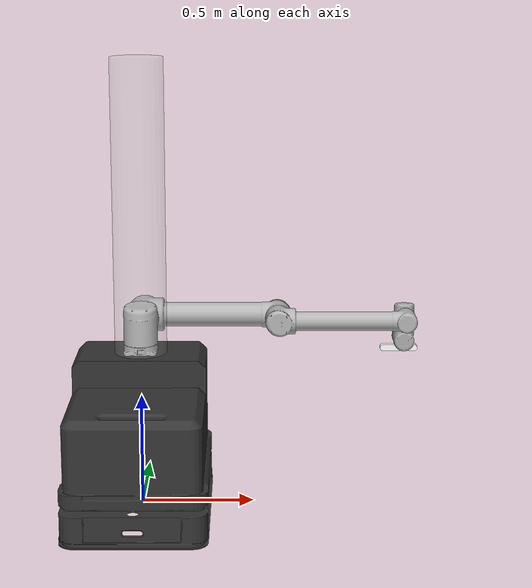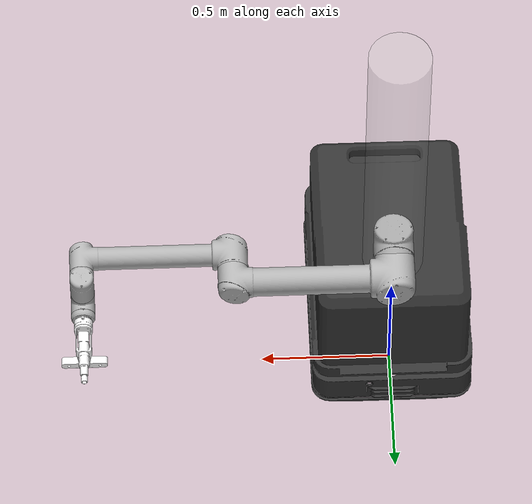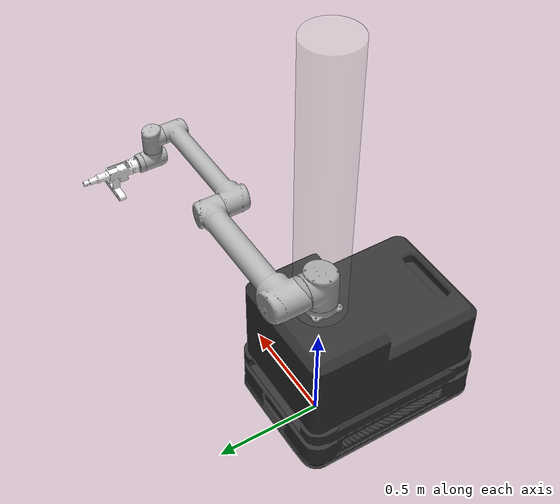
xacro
<?xml version="1.0"?>
<robot xmlns:xacro="http://ros.org/wiki/xacro"
       name="ur10" >

  <!-- common stuff -->
  <xacro:include filename="$(find ur_description)/urdf/common.gazebo.xacro" />

  <!-- ur10 -->
  <xacro:include filename="$(find ur_description)/urdf/ur10.urdf.xacro" />

  <!-- tool & camera -->
  <xacro:include filename="$(find ur_description)/urdf/tool_camera.urdf" />

  <!-- lower_basement -->
  <xacro:include filename="$(find ur_description)/urdf/lower_basement.urdf" />

  <!-- reduced_workspace -->
  <xacro:include filename="$(find ur_description)/urdf/reduced_workspace.urdf" />

  <!-- basement_map -->
  <!--xacro:include filename="$(find trans_description)/urdf/trans_description.urdf" /-->

  <!-- arm -->
  <xacro:ur10_robot prefix="" joint_limited="true"
		 shoulder_pan_lower_limit="${-pi}" shoulder_pan_upper_limit="${2*pi}"
		 shoulder_lift_lower_limit="${-3*pi/2}" shoulder_lift_upper_limit="${pi}"
		 elbow_joint_lower_limit="${-pi}" elbow_joint_upper_limit="${pi}"
		 wrist_1_lower_limit="${-3*pi/2}" wrist_1_upper_limit="${pi}"
		 wrist_2_lower_limit="${-pi}" wrist_2_upper_limit="${pi}"
		 wrist_3_lower_limit="${-pi}" wrist_3_upper_limit="${pi}"
/>

  <link name="world" />

  <joint name="world_joint" type="fixed">
    <parent link="world" />
    <child link = "ur10_base_link" />
    <origin xyz="0.0 0.0 0.7025" rpy="0.0 0.0 0.0" />
   </joint>

  <joint name="tool_camera_joint" type="fixed">
    <parent link="ee_link" />
    <child link = "tool_base_link" />
    <origin xyz="0.0 0.0 0.0" rpy="${0.5*pi} 0.0 0.0" />
  </joint>

  <joint name="basement_joint" type="fixed">
    <parent link="world" />
    <child link = "lower_base_link" />
    <origin xyz="0.2895529 0.2085154 0.2705" rpy="${-0.5*pi} 0.0 ${pi}" />
  </joint>

  <joint name="reduce_joint" type="fixed">
    <parent link="ur10_base_link" />
    <child link = "reduce_link" />
    <origin xyz="0.0 0.0 0.0" rpy="0.0 0.0 0.0" />
  </joint>

</robot>

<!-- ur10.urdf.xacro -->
<robot xmlns:xacro="http://ros.org/wiki/xacro">

<!--
  Author: Kelsey Hawkins
  Contributers: Jimmy Da Silva, Ajit Krisshna N L, Muhammad Asif Rana
-->

  <xacro:include filename="$(find ur_description)/urdf/ur.transmission.xacro" />
  <xacro:include filename="$(find ur_description)/urdf/ur.gazebo.xacro" />

  <xacro:macro name="cylinder_inertial" params="radius length mass *origin">
    <inertial>
      <mass value="${mass}" />
      <xacro:insert_block name="origin" />
      <inertia ixx="${0.0833333 * mass * (3 * radius * radius + length * length)}" ixy="0.0" ixz="0.0"
        iyy="${0.0833333 * mass * (3 * radius * radius + length * length)}" iyz="0.0"
        izz="${0.5 * mass * radius * radius}" />
    </inertial>
  </xacro:macro>

  <xacro:macro name="ur10_robot" params="prefix joint_limited
		 shoulder_pan_lower_limit:=${-pi}    shoulder_pan_upper_limit:=${2*pi}
		 shoulder_lift_lower_limit:=${-3*pi/2}    shoulder_lift_upper_limit:=${pi}
		 elbow_joint_lower_limit:=${-pi}    elbow_joint_upper_limit:=${pi}
		 wrist_1_lower_limit:=${-3*pi/2}    wrist_1_upper_limit:=${pi}
		 wrist_2_lower_limit:=${-pi}    wrist_2_upper_limit:=${pi}
		 wrist_3_lower_limit:=${-pi}    wrist_3_upper_limit:=${pi}">

    <!-- Inertia parameters -->
    <xacro:property name="base_mass" value="4.0" />  <!-- This mass might be incorrect -->
    <xacro:property name="shoulder_mass" value="7.778" />
    <xacro:property name="upper_arm_mass" value="12.93" />
    <xacro:property name="forearm_mass" value="3.87" />
    <xacro:property name="wrist_1_mass" value="1.96" />
    <xacro:property name="wrist_2_mass" value="1.96" />
    <xacro:property name="wrist_3_mass" value="0.202" />

    <xacro:property name="shoulder_cog" value="0.00008 0.00244 -0.037" />
    <xacro:property name="upper_arm_cog" value="0.00001 0.15061 0.38757" />
    <xacro:property name="forearm_cog" value="-0.00012 0.06112 0.1984" />
    <xacro:property name="wrist_1_cog" value="-0.00021 -0.00112 0.02269" />
    <xacro:property name="wrist_2_cog" value="-0.00021 0.00112 0.002269" />
    <xacro:property name="wrist_3_cog" value="0 -0.001156 -0.00149" />

    <!-- Kinematic model -->
    <!-- Properties from urcontrol.conf -->
    <xacro:property name="d1" value="0.1273" />
    <xacro:property name="a2" value="-0.612" />
    <xacro:property name="a3" value="-0.5723" />
    <xacro:property name="d4" value="0.163941" />
    <xacro:property name="d5" value="0.1157" />
    <xacro:property name="d6" value="0.0922" />

    <!-- Arbitrary offsets for shoulder/elbow joints -->
    <xacro:property name="shoulder_offset" value="0.220941" />  <!-- measured from model -->
    <xacro:property name="elbow_offset" value="-0.1719" /> <!-- measured from model -->

    <!-- link lengths used in model -->
    <xacro:property name="shoulder_height" value="${d1}" />
    <xacro:property name="upper_arm_length" value="${-a2}" />
    <xacro:property name="forearm_length" value="${-a3}" />
    <xacro:property name="wrist_1_length" value="${d4-elbow_offset-shoulder_offset}" />
    <xacro:property name="wrist_2_length" value="${d5}" />
    <xacro:property name="wrist_3_length" value="${d6}" />

    <link name="${prefix}ur10_base_link" >
      <visual>
        <geometry>
          <mesh filename="package://ur_description/meshes/ur10/visual/base.dae"/>
        </geometry>
        <material name="LightGrey">
          <color rgba="0.7 0.7 0.7 1.0"/>
        </material>
      </visual>
      <collision>
        <geometry>
          <mesh filename="package://ur_description/meshes/ur10/collision/base.stl"/>
        </geometry>
      </collision>
      <xacro:cylinder_inertial radius="0.075" length="0.038" mass="${base_mass}">
        <origin xyz="0.0 0.0 0.0" rpy="0 0 0" />
      </xacro:cylinder_inertial>
    </link>

    <joint name="${prefix}shoulder_pan_joint" type="revolute">
      <parent link="${prefix}ur10_base_link" />
      <child link = "${prefix}shoulder_link" />
      <origin xyz="0.0 0.0 ${shoulder_height}" rpy="0.0 0.0 0.0" />
      <axis xyz="0 0 1" />
      <xacro:unless value="${joint_limited}">
        <limit lower="${-2.0 * pi}" upper="${2.0 * pi}" effort="330.0" velocity="2.16"/>
      </xacro:unless>
      <xacro:if value="${joint_limited}">
        <limit lower="${shoulder_pan_lower_limit}" upper="${shoulder_pan_upper_limit}" effort="330.0" velocity="2.16"/>
      </xacro:if>
      <dynamics damping="0.0" friction="0.0"/>
    </joint>

    <link name="${prefix}shoulder_link">
      <visual>
        <geometry>
          <mesh filename="package://ur_description/meshes/ur10/visual/shoulder.dae"/>
        </geometry>
        <material name="LightGrey">
          <color rgba="0.7 0.7 0.7 1.0"/>
        </material>
      </visual>
      <collision>
        <geometry>
          <mesh filename="package://ur_description/meshes/ur10/collision/shoulder.stl"/>
        </geometry>
      </collision>
      <xacro:cylinder_inertial radius="0.075" length="0.178" mass="${shoulder_mass}">
        <origin xyz="0.0 0.0 0.0" rpy="0 0 0" />
      </xacro:cylinder_inertial>
    </link>

    <joint name="${prefix}shoulder_lift_joint" type="revolute">
      <parent link="${prefix}shoulder_link" />
      <child link = "${prefix}upper_arm_link" />
      <origin xyz="0.0 ${shoulder_offset} 0.0" rpy="0.0 ${pi / 2.0} 0.0" />
      <axis xyz="0 1 0" />
      <xacro:unless value="${joint_limited}">
        <limit lower="${-2.0 * pi}" upper="${2.0 * pi}" effort="330.0" velocity="2.16"/>
      </xacro:unless>
      <xacro:if value="${joint_limited}">
        <limit lower="${shoulder_lift_lower_limit}" upper="${shoulder_lift_upper_limit}" effort="330.0" velocity="2.16"/>
      </xacro:if>
      <dynamics damping="0.0" friction="0.0"/>
    </joint>

    <link name="${prefix}upper_arm_link">
      <visual>
        <geometry>
          <mesh filename="package://ur_description/meshes/ur10/visual/upperarm.dae"/>
        </geometry>
        <material name="LightGrey">
          <color rgba="0.7 0.7 0.7 1.0"/>
        </material>
      </visual>
      <collision>
        <geometry>
          <mesh filename="package://ur_description/meshes/ur10/collision/upperarm.stl"/>
        </geometry>
      </collision>
      <xacro:cylinder_inertial radius="0.075" length="${-a2}" mass="${upper_arm_mass}">
        <origin xyz="0.0 0.0 ${-a2/2.0}" rpy="0 0 0" />
      </xacro:cylinder_inertial>
    </link>

    <joint name="${prefix}elbow_joint" type="revolute">
      <parent link="${prefix}upper_arm_link" />
      <child link = "${prefix}forearm_link" />
      <origin xyz="0.0 ${elbow_offset} ${upper_arm_length}" rpy="0.0 0.0 0.0" />
      <axis xyz="0 1 0" />
      <xacro:unless value="${joint_limited}">
        <limit lower="${-pi}" upper="${pi}" effort="150.0" velocity="3.15"/>
      </xacro:unless>
      <xacro:if value="${joint_limited}">
        <limit lower="${elbow_joint_lower_limit}" upper="${elbow_joint_upper_limit}" effort="150.0" velocity="3.15"/>
      </xacro:if>
      <dynamics damping="0.0" friction="0.0"/>
    </joint>

    <link name="${prefix}forearm_link">
      <visual>
         <geometry>
          <mesh filename="package://ur_description/meshes/ur10/visual/forearm.dae"/>
        </geometry>
        <material name="LightGrey">
          <color rgba="0.7 0.7 0.7 1.0"/>
        </material>
      </visual>
      <collision>
        <geometry>
          <mesh filename="package://ur_description/meshes/ur10/collision/forearm.stl"/>
        </geometry>
      </collision>
      <xacro:cylinder_inertial radius="0.075" length="${-a3}" mass="${forearm_mass}">
        <origin xyz="0.0 0.0 ${-a3/2.0}" rpy="0 0 0" />
      </xacro:cylinder_inertial>
    </link>

    <joint name="${prefix}wrist_1_joint" type="revolute">
      <parent link="${prefix}forearm_link" />
      <child link = "${prefix}wrist_1_link" />
      <origin xyz="0.0 0.0 ${forearm_length}" rpy="0.0 ${pi / 2.0} 0.0" />
      <axis xyz="0 1 0" />
      <xacro:unless value="${joint_limited}">
        <limit lower="${-2.0 * pi}" upper="${2.0 * pi}" effort="54.0" velocity="3.2"/>
      </xacro:unless>
      <xacro:if value="${joint_limited}">
        <limit lower="${wrist_1_lower_limit}" upper="${wrist_1_upper_limit}" effort="54.0" velocity="3.2"/>
      </xacro:if>
      <dynamics damping="0.0" friction="0.0"/>
    </joint>

    <link name="${prefix}wrist_1_link">
      <visual>
        <geometry>
          <mesh filename="package://ur_description/meshes/ur10/visual/wrist1.dae"/>
        </geometry>
        <material name="LightGrey">
          <color rgba="0.7 0.7 0.7 1.0"/>
        </material>
      </visual>
      <collision>
        <geometry>
          <mesh filename="package://ur_description/meshes/ur10/collision/wrist1.stl"/>
        </geometry>
      </collision>
      <xacro:cylinder_inertial radius="0.075" length="0.12" mass="${wrist_1_mass}">
        <origin xyz="0.0 0.0 0.0" rpy="0 0 0" />
      </xacro:cylinder_inertial>
    </link>

    <joint name="${prefix}wrist_2_joint" type="revolute">
      <parent link="${prefix}wrist_1_link" />
      <child link = "${prefix}wrist_2_link" />
      <origin xyz="0.0 ${wrist_1_length} 0.0" rpy="0.0 0.0 0.0" />
      <axis xyz="0 0 1" />
      <xacro:unless value="${joint_limited}">
        <limit lower="${-2.0 * pi}" upper="${2.0 * pi}" effort="54.0" velocity="3.2"/>
      </xacro:unless>
      <xacro:if value="${joint_limited}">
        <limit lower="${wrist_2_lower_limit}" upper="${wrist_2_upper_limit}" effort="54.0" velocity="3.2"/>
      </xacro:if>
      <dynamics damping="0.0" friction="0.0"/>
    </joint>

    <link name="${prefix}wrist_2_link">
      <visual>
        <geometry>
          <mesh filename="package://ur_description/meshes/ur10/visual/wrist2.dae"/>
        </geometry>
        <material name="LightGrey">
          <color rgba="0.7 0.7 0.7 1.0"/>
        </material>
      </visual>
      <collision>
        <geometry>
          <mesh filename="package://ur_description/meshes/ur10/collision/wrist2.stl"/>
        </geometry>
      </collision>
      <xacro:cylinder_inertial radius="0.075" length="0.12" mass="${wrist_2_mass}">
        <origin xyz="0.0 0.0 0.0" rpy="0 0 0" />
      </xacro:cylinder_inertial>
    </link>

    <joint name="${prefix}wrist_3_joint" type="revolute">
      <parent link="${prefix}wrist_2_link" />
      <child link = "${prefix}wrist_3_link" />
      <origin xyz="0.0 0.0 ${wrist_2_length}" rpy="0.0 0.0 0.0" />
      <axis xyz="0 1 0" />
      <xacro:unless value="${joint_limited}">
        <limit lower="${-2.0 * pi}" upper="${2.0 * pi}" effort="54.0" velocity="3.2"/>
      </xacro:unless>
      <xacro:if value="${joint_limited}">
        <limit lower="${wrist_3_lower_limit}" upper="${wrist_3_upper_limit}" effort="54.0" velocity="3.2"/>
      </xacro:if>
      <dynamics damping="0.0" friction="0.0"/>
    </joint>

    <link name="${prefix}wrist_3_link">
      <visual>
        <geometry>
          <mesh filename="package://ur_description/meshes/ur10/visual/wrist3.dae"/>
        </geometry>
        <material name="LightGrey">
          <color rgba="0.7 0.7 0.7 1.0"/>
        </material>
      </visual>
      <collision>
        <geometry>
          <mesh filename="package://ur_description/meshes/ur10/collision/wrist3.stl"/>
        </geometry>
      </collision>
      <xacro:cylinder_inertial radius="0.075" length="0.12" mass="${wrist_3_mass}">
        <origin xyz="0.0 0.0 0.0" rpy="0 0 0" />
      </xacro:cylinder_inertial>
    </link>

    <joint name="${prefix}ee_fixed_joint" type="fixed">
      <parent link="${prefix}wrist_3_link" />
      <child link = "${prefix}ee_link" />
      <origin xyz="0.0 ${wrist_3_length} 0.0" rpy="0.0 0.0 ${pi/2.0}" />
    </joint>

    <link name="${prefix}ee_link">
      <collision>
        <geometry>
          <box size="0.01 0.01 0.01"/>
        </geometry>
        <origin rpy="0 0 0" xyz="-0.01 0 0"/>
      </collision>
    </link>

    <xacro:ur_arm_transmission prefix="${prefix}" />
    <xacro:ur_arm_gazebo prefix="${prefix}" />

    <!-- ROS base_link to UR 'Base' Coordinates transform -->
    <link name="${prefix}base"/>
    <joint name="${prefix}ur10_base_link-base_fixed_joint" type="fixed">
      <!-- NOTE: this rotation is only needed as long as base_link itself is
                 not corrected wrt the real robot (ie: rotated over 180
                 degrees)
      -->
      <origin xyz="0 0 0" rpy="0 0 ${-pi}"/>
      <parent link="${prefix}ur10_base_link"/>
      <child link="${prefix}base"/>
    </joint>

    <!-- Frame coincident with all-zeros TCP on UR controller -->
    <link name="${prefix}tool0"/>
    <joint name="${prefix}wrist_3_link-tool0_fixed_joint" type="fixed">
      <origin xyz="0 ${wrist_3_length} 0" rpy="${pi/-2.0} 0 0"/>
      <parent link="${prefix}wrist_3_link"/>
      <child link="${prefix}tool0"/>
    </joint>

  </xacro:macro>
</robot>

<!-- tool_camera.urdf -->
<robot
  name="tool_camera">

  <link
    name="tool_base_link">
    <inertial>
      <origin
        xyz="0.089082 -6.8669E-06 -0.005707"
        rpy="0 0 0" />
      <mass
        value="0.48825" />
      <inertia
        ixx="0.00030597"
        ixy="1.8672E-07"
        ixz="1.017E-05"
        iyy="0.0021846"
        iyz="-2.132E-08"
        izz="0.0021122" />
    </inertial>
    <visual>
      <origin
        xyz="0 0 0"
        rpy="0 0 0" />
      <geometry>
        <mesh
          filename="package://ur_description/meshes/tool_camera/tool_base_link.STL" />
      </geometry>
      <material
        name="">
        <color
          rgba="1 1 1 1" />
      </material>
    </visual>
    <collision>
      <origin
        xyz="0 0 0"
        rpy="0 0 0" />
      <geometry>
        <mesh
          filename="package://ur_description/meshes/tool_camera/tool_base_link.STL" />
      </geometry>
    </collision>
  </link>
  <link
    name="tool_camera_link">
    <inertial>
      <origin
        xyz="-1.3878E-17 0.015013 0.015594"
        rpy="0 0 0" />
      <mass
        value="0.1566" />
      <inertia
        ixx="2.4411E-05"
        ixy="-3.8372E-22"
        ixz="4.0067E-21"
        iyy="0.00038308"
        iyz="-2.256E-09"
        izz="0.00038168" />
    </inertial>
    <visual>
      <origin
        xyz="0 0 0"
        rpy="0 0 0" />
      <geometry>
        <mesh
          filename="package://ur_description/meshes/tool_camera/camera_link.STL" />
      </geometry>
      <material
        name="">
        <color
          rgba="1 1 1 1" />
      </material>
    </visual>
    <collision>
      <origin
        xyz="0 0 0"
        rpy="0 0 0" />
      <geometry>
        <mesh
          filename="package://ur_description/meshes/tool_camera/camera_link.STL" />
      </geometry>
    </collision>
  </link>
  <joint
    name="camera_set_joint"
    type="fixed">
    <origin
      xyz="0.10465 0.079 0"
      rpy="0 1.5708 0" />
    <parent
      link="tool_base_link" />
    <child
      link="tool_camera_link" />
    <axis
      xyz="0 0 0" />
  </joint>
</robot>

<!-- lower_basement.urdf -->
<robot
  name="lower_basement">
  <link
    name="lower_base_link">
    <inertial>
      <origin
        xyz="-0.00027939 0.0051002 -0.017579"
        rpy="0 0 0" />
      <mass
        value="28.379" />
      <inertia
        ixx="2.981"
        ixy="-0.0038509"
        ixz="-0.00098344"
        iyy="2.1914"
        iyz="-0.041119"
        izz="3.3081" />
    </inertial>
    <visual>
      <origin
        xyz="0 0 0"
        rpy="0 0 0" />
      <geometry>
        <mesh
          filename="package://ur_description/meshes/basement/base_link.STL" />
      </geometry>
      <material
        name="">
        <color
          rgba="0.2 0.2 0.2 1" />
      </material>
    </visual>
    <collision>
      <origin
        xyz="0 0 0"
        rpy="0 0 0" />
      <geometry>
        <mesh
          filename="package://ur_description/meshes/basement/base_link.STL" />
      </geometry>
    </collision>
  </link>
</robot>

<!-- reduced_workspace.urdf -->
<robot
  name="reduced_workspace">
  <link
    name="reduce_link">
    <visual>
      <origin
        xyz="0 0 0.65"
        rpy="0 0 0" />
      <geometry>
        <cylinder length="1.3" radius="0.116"/>
      </geometry>
      <material
        name="">
        <color
          rgba="0.8 0.8 0.8 0.2" />
      </material>
    </visual>
    <collision>
      <origin
        xyz="0 0 0.65"
        rpy="0 0 0" />
      <geometry>
        <cylinder length="1.3" radius="0.116"/>
      </geometry>
    </collision>
  </link>
</robot>
